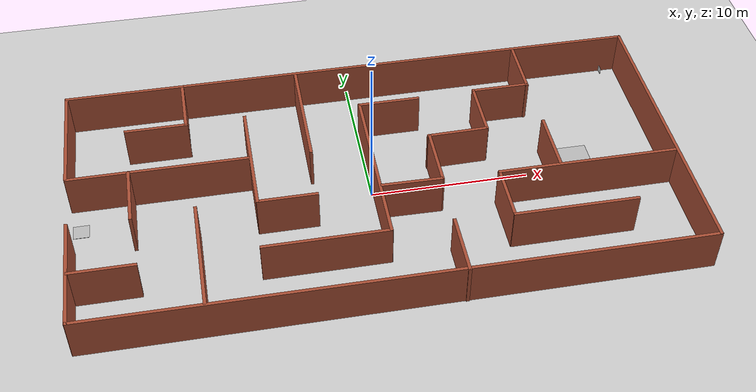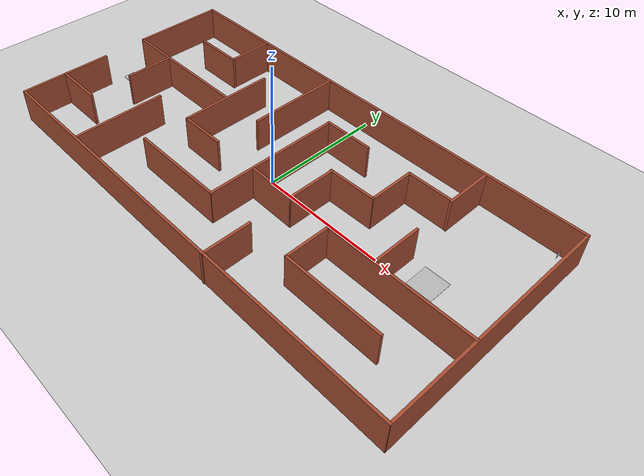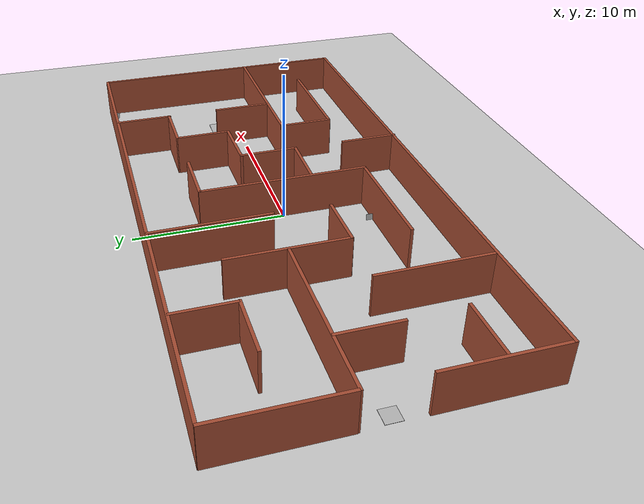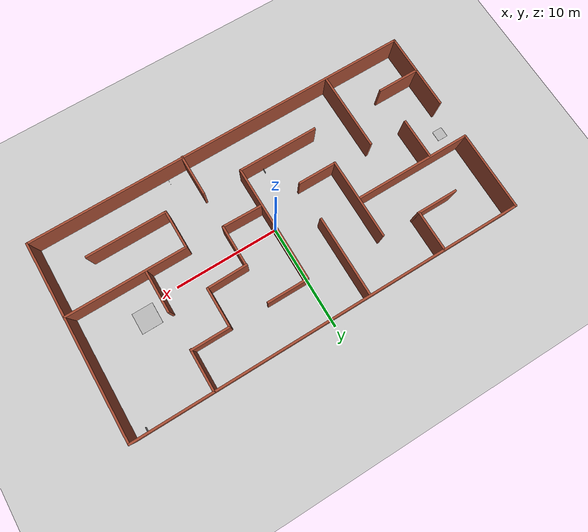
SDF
<sdf version="1.6">
 <world name="default">
  <light name="sun" type="directional">
   <pose>0 0 10 0 -0 0</pose>
   <diffuse>0.8 0.8 0.8 1</diffuse>
   <specular>0.2 0.2 0.2 1</specular>
   <attenuation>
    <range>1000</range>
    <constant>0.9</constant>
    <linear>0.01</linear>
    <quadratic>0.001</quadratic>
   </attenuation>
   <direction>-0.5 0.1 -0.9</direction>
  </light>
  <model name="ground_plane">
   <static>1</static>
   <link name="link">
    <collision name="collision">
     <geometry><plane><normal>0 0 1</normal><size>300 300</size></plane></geometry>
     <surface><friction><ode><mu>100</mu><mu2>50</mu2></ode></friction></surface>
    </collision>
    <visual name="visual">
     <cast_shadows>0</cast_shadows>
     <geometry><plane><normal>0 0 1</normal><size>300 300</size></plane></geometry>
     <material>
      <script><uri>file://media/materials/scripts/gazebo.material</uri><name>Gazebo/Grey</name></script>
     </material>
    </visual>
   </link>
  </model>
  <gravity>0 0 -9.8</gravity>
  <magnetic_field>6e-06 2.3e-05 -4.2e-05</magnetic_field>
  <atmosphere type="adiabatic"/>
  <physics name="default_physics" default="0" type="ode">
   <max_step_size>0.001</max_step_size>
   <real_time_factor>1</real_time_factor>
   <real_time_update_rate>1000</real_time_update_rate>
  </physics>
  <scene><ambient>0.4 0.4 0.4 1</ambient><background>0.7 0.7 0.7 1</background><shadows>1</shadows></scene>
  <spherical_coordinates>
   <surface_model>EARTH_WGS84</surface_model>
   <latitude_deg>0</latitude_deg>
   <longitude_deg>0</longitude_deg>
   <elevation>0</elevation>
   <heading_deg>0</heading_deg>
  </spherical_coordinates>
  <model name="ceiling">
   <link name="link">
    <inertial>
     <mass>100000</mass>
     <inertia><ixx>100000</ixx><ixy>0</ixy><ixz>0</ixz><iyy>100000</iyy><iyz>0</iyz><izz>100000</izz></inertia>
    </inertial>
    <collision name="collision">
     <geometry><box><size>300 300 0.5</size></box></geometry>
     <friction><ode><mu>1</mu><mu2>1</mu2></ode></friction>
     <contact><ode><kp>1e+07</kp><kd>1</kd><min_depth>0.001</min_depth><max_vel>0.1</max_vel></ode></contact>
    </collision>
   </link>
   <pose>0 0 5 0 0 0</pose>
  </model>
  <model name="map2_3">
   <pose>0.206187 0.019665 0 0 -0 0</pose>
   <link name="Wall_0">
    <collision name="Wall_0_Collision">
     <geometry><box><size>37.5 0.2 3</size></box></geometry>
     <pose>0 0 1.25 0 -0 0</pose>
    </collision>
    <visual name="Wall_0_Visual">
     <pose>0 0 1.25 0 -0 0</pose>
     <geometry><box><size>37.5 0.2 3</size></box></geometry>
     <material>
      <script><uri>file://media/materials/scripts/gazebo.material</uri><name>Gazebo/Bricks</name></script>
      <ambient>1 1 1 1</ambient>
     </material>
     <meta><layer>0</layer></meta>
    </visual>
    <pose>0.023365 9.33194 0 0 -0 0</pose>
   </link>
   <link name="Wall_1">
    <collision name="Wall_1_Collision">
     <geometry><box><size>18.75 0.2 3</size></box></geometry>
     <pose>0 0 1.25 0 -0 0</pose>
    </collision>
    <visual name="Wall_1_Visual">
     <pose>0 0 1.25 0 -0 0</pose>
     <geometry><box><size>18.75 0.2 3</size></box></geometry>
     <material>
      <script><uri>file://media/materials/scripts/gazebo.material</uri><name>Gazebo/Bricks</name></script>
      <ambient>1 1 1 1</ambient>
     </material>
     <meta><layer>0</layer></meta>
    </visual>
    <pose>18.6984 0.031939 0 0 -0 -1.5708</pose>
   </link>
   <link name="Wall_11">
    <collision name="Wall_11_Collision">
     <geometry><box><size>4 0.2 3</size></box></geometry>
     <pose>0 0 1.25 0 -0 0</pose>
    </collision>
    <visual name="Wall_11_Visual">
     <pose>0 0 1.25 0 -0 0</pose>
     <geometry><box><size>4 0.2 3</size></box></geometry>
     <material>
      <script><uri>file://media/materials/scripts/gazebo.material</uri><name>Gazebo/Bricks</name></script>
      <ambient>1 1 1 1</ambient>
     </material>
     <meta><layer>0</layer></meta>
    </visual>
    <pose>-14.9432 -0.099798 0 0 -0 -1.5708</pose>
   </link>
   <link name="Wall_13">
    <collision name="Wall_13_Collision">
     <geometry><box><size>4 0.2 3</size></box></geometry>
     <pose>0 0 1.25 0 -0 0</pose>
    </collision>
    <visual name="Wall_13_Visual">
     <pose>0 0 1.25 0 -0 0</pose>
     <geometry><box><size>4 0.2 3</size></box></geometry>
     <material>
      <script><uri>file://media/materials/scripts/gazebo.material</uri><name>Gazebo/Bricks</name></script>
      <ambient>1 1 1 1</ambient>
     </material>
     <meta><layer>0</layer></meta>
    </visual>
    <pose>-16.67 -5.68541 0 0 -0 0</pose>
   </link>
   <link name="Wall_15">
    <collision name="Wall_15_Collision">
     <geometry><box><size>7.5 0.2 3</size></box></geometry>
     <pose>0 0 1.25 0 -0 0</pose>
    </collision>
    <visual name="Wall_15_Visual">
     <pose>0 0 1.25 0 -0 0</pose>
     <geometry><box><size>7.5 0.2 3</size></box></geometry>
     <material>
      <script><uri>file://media/materials/scripts/gazebo.material</uri><name>Gazebo/Bricks</name></script>
      <ambient>1 1 1 1</ambient>
     </material>
     <meta><layer>0</layer></meta>
    </visual>
    <pose>-11.131 -5.50605 0 0 -0 -1.5708</pose>
   </link>
   <link name="Wall_17">
    <collision name="Wall_17_Collision">
     <geometry><box><size>7.75 0.2 3</size></box></geometry>
     <pose>0 0 1.25 0 -0 0</pose>
    </collision>
    <visual name="Wall_17_Visual">
     <pose>0 0 1.25 0 -0 0</pose>
     <geometry><box><size>7.75 0.2 3</size></box></geometry>
     <material>
      <script><uri>file://media/materials/scripts/gazebo.material</uri><name>Gazebo/Bricks</name></script>
      <ambient>1 1 1 1</ambient>
     </material>
     <meta><layer>0</layer></meta>
    </visual>
    <pose>-7.46019 1.83297 0 0 -0 -1.5708</pose>
   </link>
   <link name="Wall_18">
    <collision name="Wall_18_Collision">
     <geometry><box><size>3.75 0.2 3</size></box></geometry>
     <pose>0 0 1.25 0 -0 0</pose>
    </collision>
    <visual name="Wall_18_Visual">
     <pose>0 0 1.25 0 -0 0</pose>
     <geometry><box><size>3.75 0.2 3</size></box></geometry>
     <material>
      <script><uri>file://media/materials/scripts/gazebo.material</uri><name>Gazebo/Bricks</name></script>
      <ambient>1 1 1 1</ambient>
     </material>
     <meta><layer>0</layer></meta>
    </visual>
    <pose>-5.66019 -1.96703 0 0 -0 0</pose>
   </link>
   <link name="Wall_2">
    <collision name="Wall_2_Collision">
     <geometry><box><size>37.5 0.2 3</size></box></geometry>
     <pose>0 0 1.25 0 -0 0</pose>
    </collision>
    <visual name="Wall_2_Visual">
     <pose>0 0 1.25 0 -0 0</pose>
     <geometry><box><size>37.5 0.2 3</size></box></geometry>
     <material>
      <script><uri>file://media/materials/scripts/gazebo.material</uri><name>Gazebo/Bricks</name></script>
      <ambient>1 1 1 1</ambient>
     </material>
     <meta><layer>0</layer></meta>
    </visual>
    <pose>0.023365 -9.26806 0 0 -0 3.14159</pose>
   </link>
   <link name="Wall_20">
    <collision name="Wall_20_Collision">
     <geometry><box><size>7.75 0.2 3</size></box></geometry>
     <pose>0 0 1.25 0 -0 0</pose>
    </collision>
    <visual name="Wall_20_Visual">
     <pose>0 0 1.25 0 -0 0</pose>
     <geometry><box><size>7.75 0.2 3</size></box></geometry>
     <material>
      <script><uri>file://media/materials/scripts/gazebo.material</uri><name>Gazebo/Bricks</name></script>
      <ambient>1 1 1 1</ambient>
     </material>
     <meta><layer>0</layer></meta>
    </visual>
    <pose>-3.72818 5.5038 0 0 -0 -1.5708</pose>
   </link>
   <link name="Wall_22">
    <collision name="Wall_22_Collision">
     <geometry><box><size>7.75 0.2 3</size></box></geometry>
     <pose>0 0 1.25 0 -0 0</pose>
    </collision>
    <visual name="Wall_22_Visual">
     <pose>0 0 1.25 0 -0 0</pose>
     <geometry><box><size>7.75 0.2 3</size></box></geometry>
     <material>
      <script><uri>file://media/materials/scripts/gazebo.material</uri><name>Gazebo/Bricks</name></script>
      <ambient>1 1 1 1</ambient>
     </material>
     <meta><layer>0</layer></meta>
    </visual>
    <pose>-3.84373 -5.62423 0 0 -0 0</pose>
   </link>
   <link name="Wall_23">
    <collision name="Wall_23_Collision">
     <geometry><box><size>11.25 0.2 3</size></box></geometry>
     <pose>0 0 1.25 0 -0 0</pose>
    </collision>
    <visual name="Wall_23_Visual">
     <pose>0 0 1.25 0 -0 0</pose>
     <geometry><box><size>11.25 0.2 3</size></box></geometry>
     <material>
      <script><uri>file://media/materials/scripts/gazebo.material</uri><name>Gazebo/Bricks</name></script>
      <ambient>1 1 1 1</ambient>
     </material>
     <meta><layer>0</layer></meta>
    </visual>
    <pose>-0.043729 -0.074234 0 0 -0 1.5708</pose>
   </link>
   <link name="Wall_24">
    <collision name="Wall_24_Collision">
     <geometry><box><size>4 0.2 3</size></box></geometry>
     <pose>0 0 1.25 0 -0 0</pose>
    </collision>
    <visual name="Wall_24_Visual">
     <pose>0 0 1.25 0 -0 0</pose>
     <geometry><box><size>4 0.2 3</size></box></geometry>
     <material>
      <script><uri>file://media/materials/scripts/gazebo.material</uri><name>Gazebo/Bricks</name></script>
      <ambient>1 1 1 1</ambient>
     </material>
     <meta><layer>0</layer></meta>
    </visual>
    <pose>1.88127 5.47577 0 0 -0 0</pose>
   </link>
   <link name="Wall_26">
    <collision name="Wall_26_Collision">
     <geometry><box><size>3.81697 0.2 3</size></box></geometry>
     <pose>0 0 1.25 0 -0 0</pose>
    </collision>
    <visual name="Wall_26_Visual">
     <pose>0 0 1.25 0 -0 0</pose>
     <geometry><box><size>3.81697 0.2 3</size></box></geometry>
     <material>
      <script><uri>file://media/materials/scripts/gazebo.material</uri><name>Gazebo/Bricks</name></script>
      <ambient>1 1 1 1</ambient>
     </material>
     <meta><layer>0</layer></meta>
    </visual>
    <pose>1.89824 -1.984 0 0 -0 -0.016685</pose>
   </link>
   <link name="Wall_27">
    <collision name="Wall_27_Collision">
     <geometry><box><size>4 0.2 3</size></box></geometry>
     <pose>0 0 1.25 0 -0 0</pose>
    </collision>
    <visual name="Wall_27_Visual">
     <pose>0 0 1.25 0 -0 0</pose>
     <geometry><box><size>4 0.2 3</size></box></geometry>
     <material>
      <script><uri>file://media/materials/scripts/gazebo.material</uri><name>Gazebo/Bricks</name></script>
      <ambient>1 1 1 1</ambient>
     </material>
     <meta><layer>0</layer></meta>
    </visual>
    <pose>3.79265 -0.089586 0 0 -0 1.5708</pose>
   </link>
   <link name="Wall_28">
    <collision name="Wall_28_Collision">
     <geometry><box><size>3.93404 0.2 3</size></box></geometry>
     <pose>0 0 1.25 0 -0 0</pose>
    </collision>
    <visual name="Wall_28_Visual">
     <pose>0 0 1.25 0 -0 0</pose>
     <geometry><box><size>3.93404 0.2 3</size></box></geometry>
     <material>
      <script><uri>file://media/materials/scripts/gazebo.material</uri><name>Gazebo/Bricks</name></script>
      <ambient>1 1 1 1</ambient>
     </material>
     <meta><layer>0</layer></meta>
    </visual>
    <pose>5.62324 1.866 0 0 -0 0.016169</pose>
   </link>
   <link name="Wall_29">
    <collision name="Wall_29_Collision">
     <geometry><box><size>3.75528 0.2 3</size></box></geometry>
     <pose>0 0 1.25 0 -0 0</pose>
    </collision>
    <visual name="Wall_29_Visual">
     <pose>0 0 1.25 0 -0 0</pose>
     <geometry><box><size>3.75528 0.2 3</size></box></geometry>
     <material>
      <script><uri>file://media/materials/scripts/gazebo.material</uri><name>Gazebo/Bricks</name></script>
      <ambient>1 1 1 1</ambient>
     </material>
     <meta><layer>0</layer></meta>
    </visual>
    <pose>7.51501 3.69923 0 0 -0 1.5708</pose>
   </link>
   <link name="Wall_3">
    <collision name="Wall_3_Collision">
     <geometry><box><size>7.5 0.2 3</size></box></geometry>
     <pose>0 0 1.25 0 -0 0</pose>
    </collision>
    <visual name="Wall_3_Visual">
     <pose>0 0 1.25 0 -0 0</pose>
     <geometry><box><size>7.5 0.2 3</size></box></geometry>
     <material>
      <script><uri>file://media/materials/scripts/gazebo.material</uri><name>Gazebo/Bricks</name></script>
      <ambient>1 1 1 1</ambient>
     </material>
     <meta><layer>0</layer></meta>
    </visual>
    <pose>-18.6516 -5.59306 0 0 -0 1.5708</pose>
   </link>
   <link name="Wall_30">
    <collision name="Wall_30_Collision">
     <geometry><box><size>3.75 0.2 3</size></box></geometry>
     <pose>0 0 1.25 0 -0 0</pose>
    </collision>
    <visual name="Wall_30_Visual">
     <pose>0 0 1.25 0 -0 0</pose>
     <geometry><box><size>3.75 0.2 3</size></box></geometry>
     <material>
      <script><uri>file://media/materials/scripts/gazebo.material</uri><name>Gazebo/Bricks</name></script>
      <ambient>1 1 1 1</ambient>
     </material>
     <meta><layer>0</layer></meta>
    </visual>
    <pose>9.31501 5.56305 0 0 -0 0</pose>
   </link>
   <link name="Wall_31">
    <collision name="Wall_31_Collision">
     <geometry><box><size>4 0.2 3</size></box></geometry>
     <pose>0 0 1.25 0 -0 0</pose>
    </collision>
    <visual name="Wall_31_Visual">
     <pose>0 0 1.25 0 -0 0</pose>
     <geometry><box><size>4 0.2 3</size></box></geometry>
     <material>
      <script><uri>file://media/materials/scripts/gazebo.material</uri><name>Gazebo/Bricks</name></script>
      <ambient>1 1 1 1</ambient>
     </material>
     <meta><layer>0</layer></meta>
    </visual>
    <pose>11.115 7.42687 0 0 -0 1.5708</pose>
   </link>
   <link name="Wall_33">
    <collision name="Wall_33_Collision">
     <geometry><box><size>4 0.2 3</size></box></geometry>
     <pose>0 0 1.25 0 -0 0</pose>
    </collision>
    <visual name="Wall_33_Visual">
     <pose>0 0 1.25 0 -0 0</pose>
     <geometry><box><size>4 0.2 3</size></box></geometry>
     <material>
      <script><uri>file://media/materials/scripts/gazebo.material</uri><name>Gazebo/Bricks</name></script>
      <ambient>1 1 1 1</ambient>
     </material>
     <meta><layer>0</layer></meta>
    </visual>
    <pose>3.73584 -7.42687 0 0 -0 -1.5708</pose>
   </link>
   <link name="Wall_35">
    <collision name="Wall_35_Collision">
     <geometry><box><size>7.75 0.2 3</size></box></geometry>
     <pose>0 0 1.25 0 -0 0</pose>
    </collision>
    <visual name="Wall_35_Visual">
     <pose>0 0 1.25 0 -0 0</pose>
     <geometry><box><size>7.75 0.2 3</size></box></geometry>
     <material>
      <script><uri>file://media/materials/scripts/gazebo.material</uri><name>Gazebo/Bricks</name></script>
      <ambient>1 1 1 1</ambient>
     </material>
     <meta><layer>0</layer></meta>
    </visual>
    <pose>11.1319 -5.68541 0 0 -0 3.14159</pose>
   </link>
   <link name="Wall_36">
    <collision name="Wall_36_Collision">
     <geometry><box><size>3.75 0.2 3</size></box></geometry>
     <pose>0 0 1.25 0 -0 0</pose>
    </collision>
    <visual name="Wall_36_Visual">
     <pose>0 0 1.25 0 -0 0</pose>
     <geometry><box><size>3.75 0.2 3</size></box></geometry>
     <material>
      <script><uri>file://media/materials/scripts/gazebo.material</uri><name>Gazebo/Bricks</name></script>
      <ambient>1 1 1 1</ambient>
     </material>
     <meta><layer>0</layer></meta>
    </visual>
    <pose>7.33186 -3.88541 0 0 -0 1.5708</pose>
   </link>
   <link name="Wall_37">
    <collision name="Wall_37_Collision">
     <geometry><box><size>11.5 0.2 3</size></box></geometry>
     <pose>0 0 1.25 0 -0 0</pose>
    </collision>
    <visual name="Wall_37_Visual">
     <pose>0 0 1.25 0 -0 0</pose>
     <geometry><box><size>11.5 0.2 3</size></box></geometry>
     <material>
      <script><uri>file://media/materials/scripts/gazebo.material</uri><name>Gazebo/Bricks</name></script>
      <ambient>1 1 1 1</ambient>
     </material>
     <meta><layer>0</layer></meta>
    </visual>
    <pose>13.0069 -2.08541 0 0 -0 0</pose>
   </link>
   <link name="Wall_39">
    <collision name="Wall_39_Collision">
     <geometry><box><size>4 0.2 3</size></box></geometry>
     <pose>0 0 1.25 0 -0 0</pose>
    </collision>
    <visual name="Wall_39_Visual">
     <pose>0 0 1.25 0 -0 0</pose>
     <geometry><box><size>4 0.2 3</size></box></geometry>
     <material>
      <script><uri>file://media/materials/scripts/gazebo.material</uri><name>Gazebo/Bricks</name></script>
      <ambient>1 1 1 1</ambient>
     </material>
     <meta><layer>0</layer></meta>
    </visual>
    <pose>11.1999 -0.024037 0 0 -0 -1.5708</pose>
   </link>
   <link name="Wall_5">
    <collision name="Wall_5_Collision">
     <geometry><box><size>7.54641 0.2 3</size></box></geometry>
     <pose>0 0 1.25 0 -0 0</pose>
    </collision>
    <visual name="Wall_5_Visual">
     <pose>0 0 1.25 0 -0 0</pose>
     <geometry><box><size>7.54641 0.2 3</size></box></geometry>
     <material>
      <script><uri>file://media/materials/scripts/gazebo.material</uri><name>Gazebo/Bricks</name></script>
      <ambient>1 1 1 1</ambient>
     </material>
     <meta><layer>0</layer></meta>
    </visual>
    <pose>-18.6748 5.63381 0 0 -0 -1.57705</pose>
   </link>
   <link name="Wall_6">
    <collision name="Wall_6_Collision">
     <geometry><box><size>11.25 0.2 3</size></box></geometry>
     <pose>0 0 1.25 0 -0 0</pose>
    </collision>
    <visual name="Wall_6_Visual">
     <pose>0 0 1.25 0 -0 0</pose>
     <geometry><box><size>11.25 0.2 3</size></box></geometry>
     <material>
      <script><uri>file://media/materials/scripts/gazebo.material</uri><name>Gazebo/Bricks</name></script>
      <ambient>1 1 1 1</ambient>
     </material>
     <meta><layer>0</layer></meta>
    </visual>
    <pose>-13.1479 1.84316 0 0 -0 0</pose>
   </link>
   <link name="Wall_8">
    <collision name="Wall_8_Collision">
     <geometry><box><size>3.76869 0.2 3</size></box></geometry>
     <pose>0 0 1.25 0 -0 0</pose>
    </collision>
    <visual name="Wall_8_Visual">
     <pose>0 0 1.25 0 -0 0</pose>
     <geometry><box><size>3.76869 0.2 3</size></box></geometry>
     <material>
      <script><uri>file://media/materials/scripts/gazebo.material</uri><name>Gazebo/Bricks</name></script>
      <ambient>1 1 1 1</ambient>
     </material>
     <meta><layer>0</layer></meta>
    </visual>
    <pose>-11.196 7.46391 0 0 -0 -1.5708</pose>
   </link>
   <link name="Wall_9">
    <collision name="Wall_9_Collision">
     <geometry><box><size>4 0.2 3</size></box></geometry>
     <pose>0 0 1.25 0 -0 0</pose>
    </collision>
    <visual name="Wall_9_Visual">
     <pose>0 0 1.25 0 -0 0</pose>
     <geometry><box><size>4 0.2 3</size></box></geometry>
     <material>
      <script><uri>file://media/materials/scripts/gazebo.material</uri><name>Gazebo/Bricks</name></script>
      <ambient>1 1 1 1</ambient>
     </material>
     <meta><layer>0</layer></meta>
    </visual>
    <pose>-13.0748 5.56204 0 0 -0 3.14159</pose>
   </link>
   <static>1</static>
  </model>
  <model name="takeoff">
   <static>1</static>
   <link name="link">
    <visual name="visual">
     <geometry><mesh><uri>model://takeoff/meshes/takeoff.dae</uri><scale>2 2 2</scale></mesh></geometry>
    </visual>
    <collision name="Takeoff_Collision">
     <geometry><mesh><uri>model://takeoff/meshes/takeoff.dae</uri><scale>2 2 2</scale></mesh></geometry>
    </collision>
   </link>
   <pose>-18 -0.5 0 0 1.57 1.57</pose>
  </model>
  <model name="landing2">
   <static>1</static>
   <link name="link">
    <visual name="visual">
     <geometry><mesh><uri>model://landing2/meshes/landing2.dae</uri><scale>2 4 4</scale></mesh></geometry>
    </visual>
    <collision name="Landing_2_Collision">
     <geometry><mesh><uri>model://landing2/meshes/landing2.dae</uri><scale>2 4 4</scale></mesh></geometry>
    </collision>
   </link>
   <pose>13.5 0 0 0 1.57 1.57</pose>
  </model>
  <model name="target_red">
   <static>0</static>
   <link name="link">
    <collision name="Target_Red_Collision">
     <geometry>
      <mesh><uri>model://target_red/meshes/target_red.dae</uri><scale>0.9 0.9 0.9</scale></mesh>
     </geometry>
    </collision>
    <visual name="visual">
     <geometry>
      <mesh><uri>model://target_red/meshes/target_red.dae</uri><scale>0.9 0.9 0.9</scale></mesh>
     </geometry>
    </visual>
    <gravity>0</gravity>
   </link>
   <pose>-2.01797 -5.25711 0 0 -0 0</pose>
  </model>
  <model name="target_blue">
   <static>0</static>
   <link name="link">
    <visual name="visual">
     <geometry>
      <mesh><uri>model://target_blue/meshes/target_blue.dae</uri><scale>0.9 0.9 0.9</scale></mesh>
     </geometry>
    </visual>
    <gravity>0</gravity>
   </link>
   <pose>5.94362 -8.83726 0 0 -0 0</pose>
  </model>
  <model name="target_green">
   <static>0</static>
   <link name="link">
    <visual name="visual">
     <geometry>
      <mesh><uri>model://target_green/meshes/target_green.dae</uri><scale>0.9 0.9 0.9</scale></mesh>
     </geometry>
    </visual>
    <gravity>0</gravity>
   </link>
   <pose>17.7582 9.02431 0 0 -0 0</pose>
  </model>
 </world>
</sdf>
